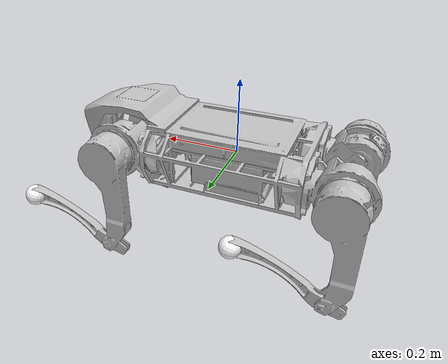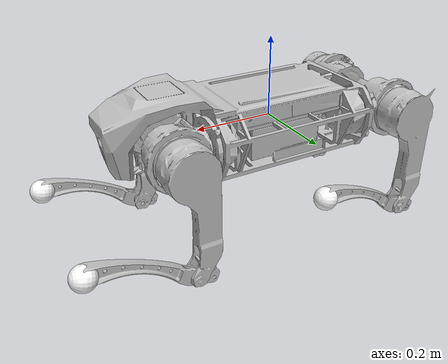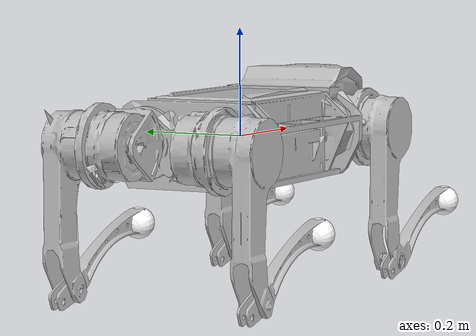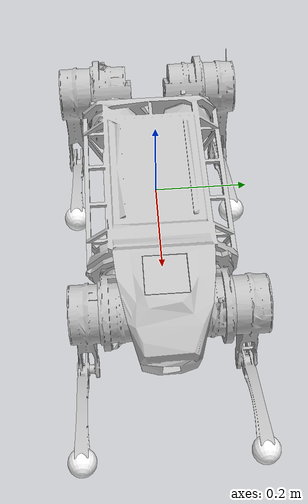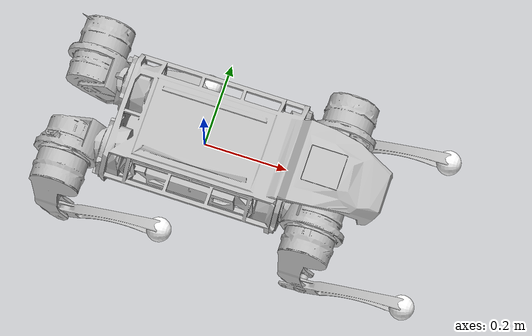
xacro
<?xml version="1.0"?>

<robot name="galileo_mini_description" xmlns:xacro="http://www.ros.org/wiki/xacro">
  <xacro:include filename="$(find galileo_mini_description)/xacro/ros2_control.xacro" />

  <link name="base" />
  <joint name="floating_base_joint" type="fixed">
    <origin xyz="0 0 0" rpy="0 0 0" />
    <parent link="base" />
    <child link="base_link" />
  </joint>
  <link name="base_link">
    <inertial>
      <origin
        xyz="0.03738 -0.0065903 0.0057934"
        rpy="0 0 0" />
      <mass
        value="20.8" />
      <inertia
        ixx="0.131102"
        ixy="0.001924"
        ixz="0.001299"
        iyy="0.407915"
        iyz="0.002595"
        izz="0.476755" />
    </inertial>
    <visual>
      <origin
        xyz="0 0 0"
        rpy="0 0 0" />
      <geometry>
        <mesh
          filename="package://galileo_mini_description/meshes/base_link.STL" />
      </geometry>
      <material
        name="">
        <color
          rgba="0.75294 0.75294 0.75294 1" />
      </material>
    </visual>
    <collision>
      <origin
        xyz="0 0 0" rpy="0 0 0" />
      <geometry>
        <box size="0.45 0.25 0.1" />
      </geometry>
    </collision>
  </link>

  <link name="FL_abd_link">
    <inertial>
      <origin
        xyz="0.067568 0.0095934 1.3738E-05"
        rpy="0 0 0" />
      <mass
        value="2.86" />
      <inertia
        ixx="0.004368"
        ixy="0.000362"
        ixz="0.000114"
        iyy="0.007476"
        iyz="0.000035"
        izz="0.006777" />
    </inertial>
    <visual>
      <origin
        xyz="0 0 0"
        rpy="0 0 0" />
      <geometry>
        <mesh
          filename="package://galileo_mini_description/meshes/FL_abd_link.STL" />
      </geometry>
      <material
        name="">
        <color
          rgba="0.75294 0.75294 0.75294 1" />
      </material>
    </visual>
    <collision>
      <origin
        xyz="0.1 0.03325 0"
        rpy="1.5707963 0 0" />
      <geometry>
        <cylinder radius="0.06" length="0.1065" />
      </geometry>
    </collision>
  </link>
  <joint name="FL_abd_joint" type="revolute">
    <origin
      xyz="0.2015 0.08 0"
      rpy="0 0 0" />
    <parent
      link="base_link" />
    <child
      link="FL_abd_link" />
    <axis
      xyz="1 0 0" />
    <limit
      lower="-0.80285"
      upper="0.80285"
      effort="100"
      velocity="21" />
  </joint>

  <link name="FL_hip_link">
    <inertial>
      <origin
        xyz="-0.0090988 -0.0065295 -0.0688"
        rpy="0 0 0" />
      <mass
        value="2.6" />
      <inertia
        ixx="0.016848"
        ixy="-0.000310"
        ixz="0.001116"
        iyy="0.016749"
        iyz="-0.002270"
        izz="0.002088" />
    </inertial>
    <visual>
      <origin
        xyz="0 0 0"
        rpy="0 0 0" />
      <geometry>
        <mesh
          filename="package://galileo_mini_description/meshes/FL_hip_link.STL" />
      </geometry>
      <material
        name="">
        <color
          rgba="0.75294 0.75294 0.75294 1" />
      </material>
    </visual>
    <collision>
      <origin
        xyz="-0.025 0 -0.08"
        rpy="0 0 0" />
      <geometry>
        <box size="0.06 0.035 0.26" />
      </geometry>
    </collision>
  </link>
  <joint name="FL_hip_joint" type="revolute">
    <origin
      xyz="0.1 0.1065 0"
      rpy="0 0 0" />
    <parent
      link="FL_abd_link" />
    <child
      link="FL_hip_link" />
    <axis
      xyz="0 1 0" />
    <limit
      lower="-4.1888"
      upper="1.0472"
      effort="100"
      velocity="21" />
  </joint>
  <link name="FL_knee_link">
    <inertial>
      <origin
        xyz="0.017829 -1.577E-05 -0.099213"
        rpy="0 0 0" />
      <mass
        value="0.314" />
      <inertia
        ixx="0.003733"
        ixy="-0.000000087"
        ixz="-0.0006"
        iyy="0.003882"
        iyz="0.000000838"
        izz="0.000177" />
    </inertial>
    <visual>
      <origin
        xyz="0 0 0"
        rpy="0 0 0" />
      <geometry>
        <mesh
          filename="package://galileo_mini_description/meshes/FL_knee_link.STL" />
      </geometry>
      <material
        name="">
        <color
          rgba="0.75294 0.75294 0.75294 1" />
      </material>
    </visual>
    <collision>
      <origin
        xyz="0.0164695 0 -0.13"
        rpy="0 -0.17453 0" />
      <geometry>
        <box size="0.05 0.03 0.23" />
      </geometry>
    </collision>
  </link>
  <joint name="FL_knee_joint" type="revolute">
    <origin
      xyz="0 0 -0.26"
      rpy="0 0 0" />
    <parent
      link="FL_hip_link" />
    <child
      link="FL_knee_link" />
    <axis
      xyz="0 1 0" />
    <limit
      lower="-2.6965"
      upper="-0.9163"
      effort="150"
      velocity="21" />
  </joint>
  <link name="FL_foot_link">
    <inertial>
      <origin
        xyz="-5.5511E-17 0 0"
        rpy="0 0 0" />
      <mass
        value="0.00020487" />
      <inertia
        ixx="1.096E-09"
        ixy="-2.0392E-56"
        ixz="0"
        iyy="1.096E-09"
        iyz="0"
        izz="1.096E-09" />
    </inertial>
    <visual>
      <origin
        xyz="0 0 0"
        rpy="0 0 0" />
      <geometry>
        <sphere radius="0.030" />
      </geometry>
      <material
        name="">
        <color
          rgba="1 1 1 1" />
      </material>
    </visual>
    <collision>
      <origin
        xyz="0 0 0"
        rpy="0 0 0" />
      <geometry>
        <sphere radius="0.030" />
      </geometry>
    </collision>
  </link>
  <joint name="FL_foot_joint" type="fixed">
    <origin
      xyz="0.032939 0 -0.26149"
      rpy="0 0 0" />
    <parent
      link="FL_knee_link" />
    <child
      link="FL_foot_link" />
    <axis
      xyz="0 0 0" />
  </joint>

  <joint name="FR_abd_joint" type="revolute">
    <origin
      xyz="0.2015 -0.08 0"
      rpy="0 0 0" />
    <parent
      link="base_link" />
    <child
      link="FR_abd_link" />
    <axis
      xyz="1 0 0" />
    <limit
      lower="-0.80285"
      upper="0.80285"
      effort="100"
      velocity="21" />
  </joint>
  <link name="FR_abd_link">
    <inertial>
      <origin
        xyz="0.067568 -0.0091759 -0.00023747"
        rpy="0 0 0" />
      <mass
        value="2.86" />
      <inertia
        ixx="0.004373"
        ixy="-0.000397"
        ixz="-0.000096"
        iyy="0.007483"
        iyz="0.000030"
        izz="0.006775" />
    </inertial>
    <visual>
      <origin
        xyz="0 0 0"
        rpy="0 0 0" />
      <geometry>
        <mesh
          filename="package://galileo_mini_description/meshes/FR_abd_link.STL" />
      </geometry>
      <material
        name="">
        <color
          rgba="0.75294 0.75294 0.75294 1" />
      </material>
    </visual>
    <collision>
      <origin
        xyz="0.1 -0.03325 0"
        rpy="1.5707963 0 0" />
      <geometry>
        <cylinder radius="0.06" length="0.1065" />
      </geometry>
    </collision>
  </link>
  <joint name="FR_hip_joint" type="revolute">
    <origin
      xyz="0.1 -0.10685 0"
      rpy="0 0 0" />
    <parent
      link="FR_abd_link" />
    <child
      link="FR_hip_link" />
    <axis
      xyz="0 1 0" />
    <limit
      lower="-4.1888"
      upper="1.0472"
      effort="100"
      velocity="21" />
  </joint>
  <link name="FR_hip_link">
    <inertial>
      <origin
        xyz="-0.0095338 0.026092 -0.067392"
        rpy="0 0 0" />
      <mass
        value="2.6" />
      <inertia
        ixx="0.016261"
        ixy="0.000284"
        ixz="0.001143"
        iyy="0.016389"
        iyz="0.002508"
        izz="0.002194" />
    </inertial>
    <visual>
      <origin
        xyz="0 0 0"
        rpy="0 0 0" />
      <geometry>
        <mesh
          filename="package://galileo_mini_description/meshes/FR_hip_link.STL" />
      </geometry>
      <material
        name="">
        <color
          rgba="0.75294 0.75294 0.75294 1" />
      </material>
    </visual>
    <collision>
      <origin
        xyz="-0.025 0 -0.08"
        rpy="0 0 0" />
      <geometry>
        <box size="0.06 0.035 0.26" />
      </geometry>
    </collision>
  </link>
  <joint name="FR_knee_joint" type="revolute">
    <origin
      xyz="0 0 -0.26"
      rpy="0 0 0" />
    <parent
      link="FR_hip_link" />
    <child
      link="FR_knee_link" />
    <axis
      xyz="0 1 0" />
    <limit
      lower="-2.6965"
      upper="-0.9163"
      effort="150"
      velocity="21" />
  </joint>
  <link name="FR_knee_link">
    <inertial>
      <origin
        xyz="0.017829 -1.577E-05 -0.099213"
        rpy="0 0 0" />
      <mass
        value="0.314" />
      <inertia
        ixx="0.003733"
        ixy="-0.000000087"
        ixz="-0.0006"
        iyy="0.003882"
        iyz="0.000000838"
        izz="0.000177" />
    </inertial>
    <visual>
      <origin
        xyz="0 0 0"
        rpy="0 0 0" />
      <geometry>
        <mesh
          filename="package://galileo_mini_description/meshes/FR_knee_link.STL" />
      </geometry>
      <material
        name="">
        <color
          rgba="0.75294 0.75294 0.75294 1" />
      </material>
    </visual>
    <collision>
      <origin
        xyz="0.0164695 0 -0.13"
        rpy="0 -0.17453 0" />
      <geometry>
        <box size="0.05 0.03 0.23" />
      </geometry>
    </collision>
  </link>
  <joint name="FR_foot_joint" type="fixed">
    <origin
      xyz="0.032939 0 -0.26149"
      rpy="0 0 0" />
    <parent
      link="FR_knee_link" />
    <child
      link="FR_foot_link" />
    <axis
      xyz="0 0 0" />
  </joint>
  <link name="FR_foot_link">
    <inertial>
      <origin
        xyz="0 0 0"
        rpy="0 0 0" />
      <mass
        value="0.00020487" />
      <inertia
        ixx="1.096E-09"
        ixy="0"
        ixz="1.7152E-40"
        iyy="1.096E-09"
        iyz="0"
        izz="1.096E-09" />
    </inertial>
    <visual>
      <origin
        xyz="0 0 0"
        rpy="0 0 0" />
      <geometry>
        <sphere radius="0.030" />
      </geometry>
      <material
        name="">
        <color
          rgba="1 1 1 1" />
      </material>
    </visual>
    <collision>
      <origin
        xyz="0 0 0"
        rpy="0 0 0" />
      <geometry>
        <sphere radius="0.030" />
      </geometry>
    </collision>
  </link>

  <joint name="HR_abd_joint" type="revolute">
    <origin
      xyz="-0.2015 -0.08 0"
      rpy="0 0 0" />
    <parent
      link="base_link" />
    <child
      link="HR_abd_link" />
    <axis
      xyz="1 0 0" />
    <limit
      lower="-0.80285"
      upper="0.80285"
      effort="100"
      velocity="21" />
  </joint>
  <link name="HR_abd_link">
    <inertial>
      <origin
        xyz="-0.067556 -0.0095934 -1.7463E-05"
        rpy="0 0 0" />
      <mass
        value="2.86" />
      <inertia
        ixx="0.004372"
        ixy="0.000364"
        ixz="-0.000106"
        iyy="0.007471"
        iyz="-0.000038"
        izz="0.006768" />
    </inertial>
    <visual>
      <origin
        xyz="0 0 0"
        rpy="0 0 0" />
      <geometry>
        <mesh
          filename="package://galileo_mini_description/meshes/HR_abd_link.STL" />
      </geometry>
      <material
        name="">
        <color
          rgba="0.75294 0.75294 0.75294 1" />
      </material>
    </visual>
    <collision>
      <origin
        xyz="-0.1 -0.03325 0"
        rpy="1.5707963 0 0" />
      <geometry>
        <cylinder radius="0.06" length="0.1065" />
      </geometry>
    </collision>
  </link>
  <joint name="HR_hip_joint" type="revolute">
    <origin
      xyz="-0.1 -0.10685 0"
      rpy="0 0 0" />
    <parent
      link="HR_abd_link" />
    <child
      link="HR_hip_link" />
    <axis
      xyz="0 1 0" />
    <limit
      lower="-4.1888"
      upper="1.0472"
      effort="100"
      velocity="21" />
  </joint>
  <link name="HR_hip_link">
    <inertial>
      <origin
        xyz="-0.0098055 0.020667 -0.067167"
        rpy="0 0 0" />
      <mass
        value="2.6" />
      <inertia
        ixx="0.017144"
        ixy="0.000198"
        ixz="0.001067"
        iyy="0.016508"
        iyz="0.002833"
        izz="0.002907" />
    </inertial>
    <visual>
      <origin
        xyz="0 0 0"
        rpy="0 0 0" />
      <geometry>
        <mesh
          filename="package://galileo_mini_description/meshes/HR_hip_link.STL" />
      </geometry>
      <material
        name="">
        <color
          rgba="0.75294 0.75294 0.75294 1" />
      </material>
    </visual>
    <collision>
      <origin
        xyz="-0.025 0 -0.08"
        rpy="0 0 0" />
      <geometry>
        <box size="0.06 0.035 0.26" />
      </geometry>
    </collision>
  </link>
  <joint name="HR_knee_joint" type="revolute">
    <origin
      xyz="0 0 -0.26"
      rpy="0 0 0" />
    <parent
      link="HR_hip_link" />
    <child
      link="HR_knee_link" />
    <axis
      xyz="0 1 0" />
    <limit
      lower="-2.6965"
      upper="-0.9163"
      effort="150"
      velocity="21" />
  </joint>
  <link name="HR_knee_link">
    <inertial>
      <origin
        xyz="0.017829 -1.577E-05 -0.099213"
        rpy="0 0 0" />
      <mass
        value="0.314" />
      <inertia
        ixx="0.003733"
        ixy="-0.000000087"
        ixz="-0.0006"
        iyy="0.003882"
        iyz="0.000000838"
        izz="0.000177" />
    </inertial>
    <visual>
      <origin
        xyz="0 0 0"
        rpy="0 0 0" />
      <geometry>
        <mesh
          filename="package://galileo_mini_description/meshes/HR_knee_link.STL" />
      </geometry>
      <material
        name="">
        <color
          rgba="0.75294 0.75294 0.75294 1" />
      </material>
    </visual>
    <collision>
      <origin
        xyz="0.0164695 0 -0.13"
        rpy="0 -0.17453 0" />
      <geometry>
        <box size="0.05 0.03 0.23" />
      </geometry>
    </collision>
  </link>
  <joint name="RR_foot_joint" type="fixed">
    <origin
      xyz="0.032939 0 -0.26149"
      rpy="0 0 0" />
    <parent
      link="HR_knee_link" />
    <child
      link="HR_foot_link" />
    <axis
      xyz="0 0 0" />
  </joint>
  <link name="HR_foot_link">
    <inertial>
      <origin
        xyz="0 0 0"
        rpy="0 0 0" />
      <mass
        value="0.000204873572147578" />
      <inertia
        ixx="1.09600066619755E-09"
        ixy="0"
        ixz="5.28443143791483E-42"
        iyy="1.09600066619755E-09"
        iyz="0"
        izz="1.09600066619755E-09" />
    </inertial>
    <visual>
      <origin
        xyz="0 0 0"
        rpy="0 0 0" />
      <geometry>
        <sphere radius="0.030" />
      </geometry>
      <material
        name="">
        <color
          rgba="1 1 1 1" />
      </material>
    </visual>
    <collision>
      <origin
        xyz="0 0 0"
        rpy="0 0 0" />
      <geometry>
        <sphere radius="0.030" />
      </geometry>
    </collision>
  </link>

  <joint name="HL_abd_joint" type="revolute">
    <origin
      xyz="-0.2015 0.08 0"
      rpy="0 0 0" />
    <parent
      link="base_link" />
    <child
      link="HL_abd_link" />
    <axis
      xyz="1 0 0" />
    <limit
      lower="-0.80285"
      upper="0.80285"
      effort="100"
      velocity="21" />
  </joint>
  <link name="HL_abd_link">
    <inertial>
      <origin
        xyz="-0.06741 0.0095934 7.3103E-05"
        rpy="0 0 0" />
      <mass
        value="2.86" />
      <inertia
        ixx="0.004372"
        ixy="0.000364"
        ixz="-0.000106"
        iyy="0.007471"
        iyz="-0.000038"
        izz="0.006768" />
    </inertial>
    <visual>
      <origin
        xyz="0 0 0"
        rpy="0 0 0" />
      <geometry>
        <mesh
          filename="package://galileo_mini_description/meshes/HL_abd_link.STL" />
      </geometry>
      <material
        name="">
        <color
          rgba="0.75294 0.75294 0.75294 1" />
      </material>
    </visual>
    <collision>
      <origin
        xyz="-0.1 0.03325 0"
        rpy="1.5707963 0 0" />
      <geometry>
        <cylinder radius="0.06" length="0.1065" />
      </geometry>
    </collision>
  </link>
  <joint name="HL_hip_joint" type="revolute">
    <origin
      xyz="-0.1 0.1065 0"
      rpy="0 0 0" />
    <parent
      link="HL_abd_link" />
    <child
      link="HL_hip_link" />
    <axis
      xyz="0 1 0" />
    <limit
      lower="-4.1888"
      upper="1.0472"
      effort="100"
      velocity="21" />
  </joint>
  <link name="HL_hip_link">
    <inertial>
      <origin
        xyz="-0.0090357 -0.0065295 -0.0688"
        rpy="0 0 0" />
      <mass
        value="2.6" />
      <inertia
        ixx="0.016848"
        ixy="-0.000310"
        ixz="0.001116"
        iyy="0.016749"
        iyz="-0.002270"
        izz="0.002088" />
    </inertial>
    <visual>
      <origin
        xyz="0 0 0"
        rpy="0 0 0" />
      <geometry>
        <mesh
          filename="package://galileo_mini_description/meshes/HL_hip_link.STL" />
      </geometry>
      <material
        name="">
        <color
          rgba="0.75294 0.75294 0.75294 1" />
      </material>
    </visual>
    <collision>
      <origin
        xyz="-0.025 0 -0.08"
        rpy="0 0 0" />
      <geometry>
        <box size="0.06 0.035 0.26" />
      </geometry>
    </collision>
  </link>
  <joint name="HL_knee_joint" type="revolute">
    <origin
      xyz="6.3209E-05 0 -0.26"
      rpy="0 0 0" />
    <parent
      link="HL_hip_link" />
    <child
      link="HL_knee_link" />
    <axis
      xyz="0 1 0" />
    <limit
      lower="-2.6965"
      upper="-0.9163"
      effort="150"
      velocity="21" />
  </joint>
  <link name="HL_knee_link">
    <inertial>
      <origin
        xyz="0.017829 -1.577E-05 -0.099213"
        rpy="0 0 0" />
      <mass
        value="0.314" />
      <inertia
        ixx="0.003733"
        ixy="-0.000000087"
        ixz="-0.0006"
        iyy="0.003882"
        iyz="0.000000838"
        izz="0.000177" />
    </inertial>
    <visual>
      <origin
        xyz="0 0 0"
        rpy="0 0 0" />
      <geometry>
        <mesh
          filename="package://galileo_mini_description/meshes/HL_knee_link.STL" />
      </geometry>
      <material
        name="">
        <color
          rgba="0.75294 0.75294 0.75294 1" />
      </material>
    </visual>
    <collision>
      <origin
        xyz="0.0164695 0 -0.13"
        rpy="0 -0.17453 0" />
      <geometry>
        <box size="0.05 0.03 0.23" />
      </geometry>
    </collision>
  </link>
  <joint name="HL_foot_link" type="fixed">
    <origin
      xyz="0.0329385085367515 0 -0.261492891464613"
      rpy="0 0 0" />
    <parent
      link="HL_knee_link" />
    <child
      link="HL_foot_link" />
    <axis
      xyz="0 0 0" />
  </joint>
  <link name="HL_foot_link">
    <inertial>
      <origin
        xyz="0 5.55111512312578E-17 0"
        rpy="0 0 0" />
      <mass
        value="0.000204873572147578" />
      <inertia
        ixx="1.09600066619755E-09"
        ixy="0"
        ixz="7.97487625425431E-42"
        iyy="1.09600066619755E-09"
        iyz="0"
        izz="1.09600066619755E-09" />
    </inertial>
    <visual>
      <origin
        xyz="0 0 0"
        rpy="0 0 0" />
      <geometry>
        <sphere radius="0.030" />
      </geometry>
      <material
        name="">
        <color
          rgba="1 1 1 1" />
      </material>
    </visual>
    <collision>
      <origin
        xyz="0 0 0"
        rpy="0 0 0" />
      <geometry>
        <sphere radius="0.030" />
      </geometry>
    </collision>
  </link>

</robot>
